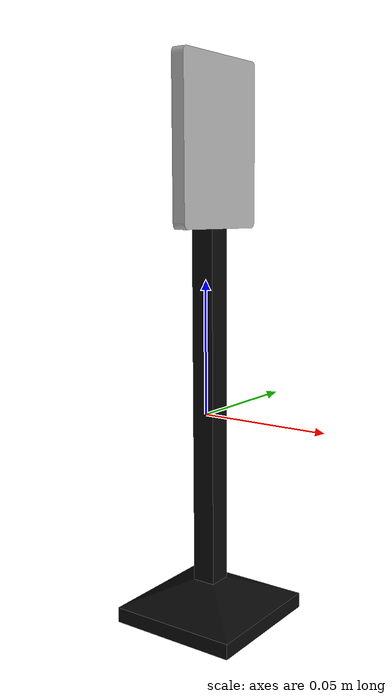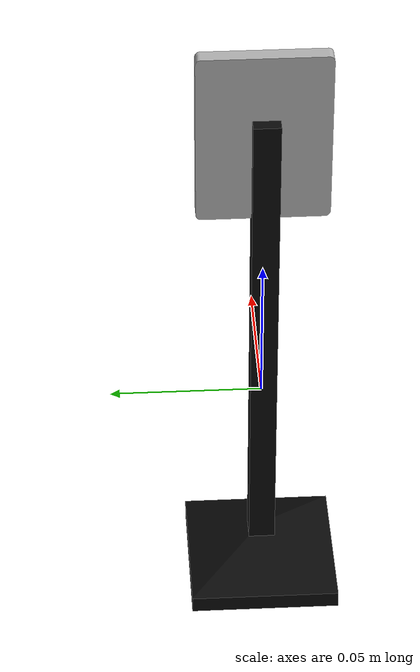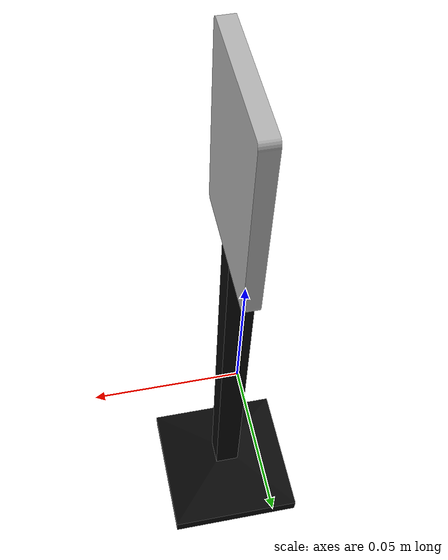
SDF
<?xml version='1.0'?>
<sdf version='1.6'>
  <model name='leave_highway_sign'>
    <static>1</static>
    <link name='sign_leg'>
      <inertial>
        <mass>0.5</mass>
        <inertia>
          <ixx>0.166667</ixx>
          <ixy>0</ixy>
          <ixz>0</ixz>
          <iyy>0.166667</iyy>
          <iyz>0</iyz>
          <izz>0.166667</izz>
        </inertia>
	<pose>0 0 -0.078998 0.0 0.0 0.0 </pose>
        <pose frame=''>0 0 0 0 -0 0</pose>
      </inertial>
      <pose frame=''>0.002193 -0.000682 -0.07606 0 -0 0</pose>
      <gravity>1</gravity>
      <self_collide>1</self_collide>
      <kinematic>0</kinematic>
      <enable_wind>1</enable_wind>
      <visual name='visual'>
        <pose frame=''>0 0 0 0 -0 0</pose>
        <geometry>
          <mesh>
            <uri>model://subassembly/meshes/sign_leg.dae</uri>
            <scale>1 1 1</scale>
          </mesh>
        </geometry>
        <transparency>0</transparency>
        <cast_shadows>1</cast_shadows>
      </visual>
      <collision name='collision'>
        <laser_retro>0</laser_retro>
        <max_contacts>10</max_contacts>
        <pose frame=''>0 0 0 0 -0 0</pose>
        <geometry>
          <mesh>
            <uri>model://subassembly/meshes/sign_leg.dae</uri>
            <scale>1 1 1</scale>
          </mesh>
        </geometry>
        <surface>
          <friction>
            <ode>
              <mu>0.46</mu>
              <mu2>1</mu2>
              <fdir1>0 0 0</fdir1>
              <slip1>0</slip1>
              <slip2>0</slip2>
            </ode>
            <torsional>
              <coefficient>1</coefficient>
              <patch_radius>0</patch_radius>
              <surface_radius>0</surface_radius>
              <use_patch_radius>1</use_patch_radius>
              <ode>
                <slip>0</slip>
              </ode>
            </torsional>
          </friction>
          <bounce>
            <restitution_coefficient>0</restitution_coefficient>
            <threshold>1e+06</threshold>
          </bounce>
          <contact>
            <collide_without_contact>0</collide_without_contact>
            <collide_without_contact_bitmask>1</collide_without_contact_bitmask>
            <collide_bitmask>1</collide_bitmask>
            <ode>
              <soft_cfm>0</soft_cfm>
              <soft_erp>0.2</soft_erp>
              <kp>1e+13</kp>
              <kd>1</kd>
              <max_vel>0.01</max_vel>
              <min_depth>0</min_depth>
            </ode>
            <bullet>
              <split_impulse>1</split_impulse>
              <split_impulse_penetration_threshold>-0.01</split_impulse_penetration_threshold>
              <soft_cfm>0</soft_cfm>
              <soft_erp>0.2</soft_erp>
              <kp>1e+13</kp>
              <kd>1</kd>
            </bullet>
          </contact>
        </surface>
      </collision>
    </link>
    <link name='rectangular_support'>
      <inertial>
        <mass>0.022</mass>
        <inertia>
          <ixx>0.166667</ixx>
          <ixy>0</ixy>
          <ixz>0</ixz>
          <iyy>0.166667</iyy>
          <iyz>0</iyz>
          <izz>0.166667</izz>
        </inertia>
        <pose frame=''>0 0 0 0 -0 0</pose>
      </inertial>
      <pose frame=''>-0.0 0.0 0.09894 0 0 3.141592</pose>
      <gravity>1</gravity>
      <self_collide>1</self_collide>
      <kinematic>0</kinematic>
      <enable_wind>1</enable_wind>
      <visual name='visual'>
        <pose frame=''>-0.002 0 0 0 -0 0</pose>
        <geometry>
          <mesh>
            <uri>model://leave_highway_sign/meshes/leave_highway_sign.dae</uri>
            <scale>1 1 1</scale>
          </mesh>
        </geometry>
        <material>
          <lighting>1</lighting>
          <script>
            <uri>model://leave_highway_sign/materials/scripts</uri>
            <uri>model://leave_highway_sign/materials/textures</uri>
            <name>LEAVE_HIGHWAY_SIGN</name>
          </script>
          <shader type='vertex'>
            <normal_map>__default__</normal_map>
          </shader>
          <ambient>0.3 0.3 0.3 1</ambient>
          <diffuse>0.7 0.7 0.7 1</diffuse>
          <specular>0.01 0.01 0.01 1</specular>
          <emissive>0 0 0 1</emissive>
        </material>
        <transparency>0</transparency>
        <cast_shadows>1</cast_shadows>
      </visual>
      <collision name='collision'>
        <laser_retro>0</laser_retro>
        <max_contacts>10</max_contacts>
        <pose frame=''>-0.002 0 0 0 -0 0</pose>
        <geometry>
          <mesh>
            <uri>model://leave_highway_sign/meshes/leave_highway_sign.dae</uri>
            <scale>1 1 1</scale>
          </mesh>
        </geometry>
        <surface>
          <friction>
            <ode>
              <mu>0.46</mu>
              <mu2>1</mu2>
              <fdir1>0 0 0</fdir1>
              <slip1>0</slip1>
              <slip2>0</slip2>
            </ode>
            <torsional>
              <coefficient>1</coefficient>
              <patch_radius>0</patch_radius>
              <surface_radius>0</surface_radius>
              <use_patch_radius>1</use_patch_radius>
              <ode>
                <slip>0</slip>
              </ode>
            </torsional>
          </friction>
          <bounce>
            <restitution_coefficient>0</restitution_coefficient>
            <threshold>1e+06</threshold>
          </bounce>
          <contact>
            <collide_without_contact>0</collide_without_contact>
            <collide_without_contact_bitmask>1</collide_without_contact_bitmask>
            <collide_bitmask>1</collide_bitmask>
            <ode>
              <soft_cfm>0</soft_cfm>
              <soft_erp>0.2</soft_erp>
              <kp>1e+13</kp>
              <kd>1</kd>
              <max_vel>0.01</max_vel>
              <min_depth>0</min_depth>
            </ode>
            <bullet>
              <split_impulse>1</split_impulse>
              <split_impulse_penetration_threshold>-0.01</split_impulse_penetration_threshold>
              <soft_cfm>0</soft_cfm>
              <soft_erp>0.2</soft_erp>
              <kp>1e+13</kp>
              <kd>1</kd>
            </bullet>
          </contact>
        </surface>
      </collision>
    </link>
    <joint name='support_to_leg_joint' type='fixed'>
      <parent>link_0</parent>
      <child>link_1</child>
      <pose frame=''>0 0 0 0 -0 0</pose>
      <physics>
        <ode>
          <limit>
            <cfm>0</cfm>
            <erp>0.2</erp>
          </limit>
          <suspension>
            <cfm>0</cfm>
            <erp>0.2</erp>
          </suspension>
        </ode>
      </physics>
    </joint>
    <static>1</static>
    <allow_auto_disable>1</allow_auto_disable>
  </model>
</sdf>
